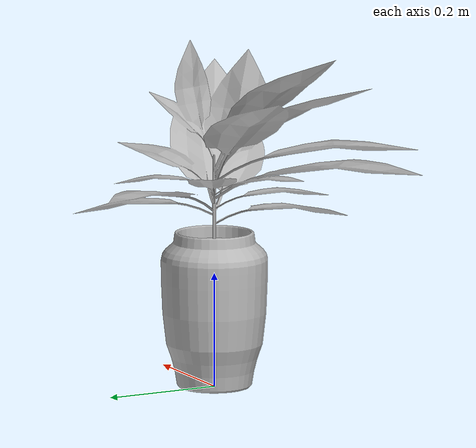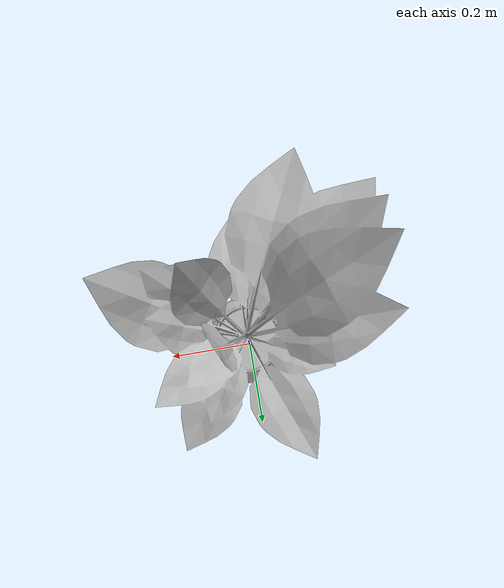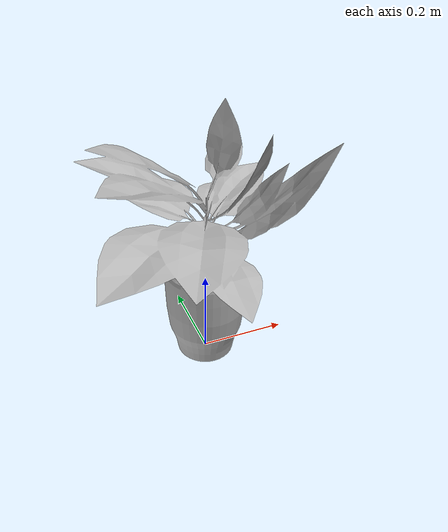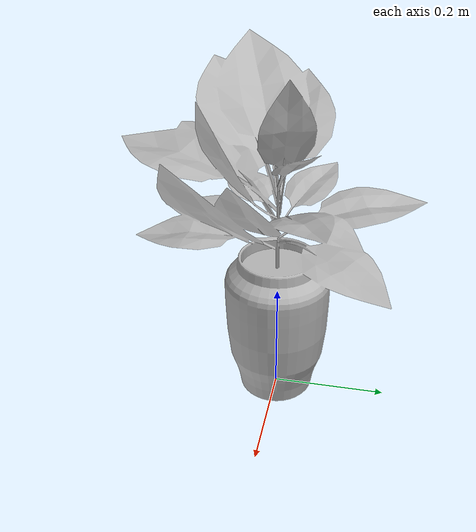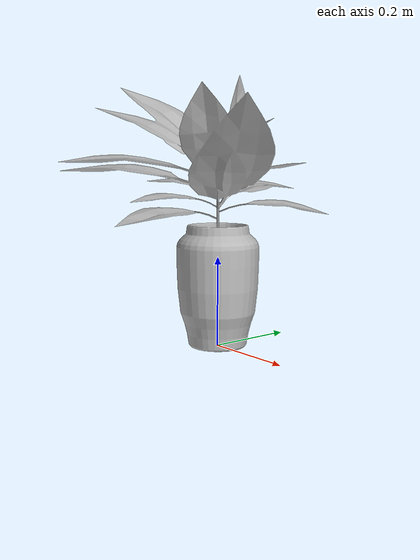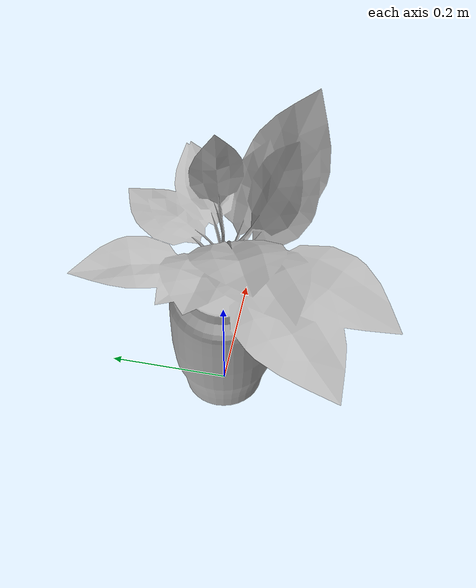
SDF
<?xml version='1.0'?>
<sdf version='1.4'>
  <model name='130'>
    <pose>0 0 0 0 0 0</pose>
    <static>true</static>
    <link name='link'>
      <collision name='collision'>
        <pose>0 0 0 0 0 0</pose>
        <geometry>
          <box>
            <size>0.51716 0.566834 2</size>
          </box>
        </geometry>
      </collision>
      <visual name='visual'>
        <pose>0 0 0 0 0 0</pose>
        <geometry>
          <mesh><uri>model://130/130.dae</uri></mesh>
        </geometry>
      </visual>
    </link>
  </model>
</sdf>
